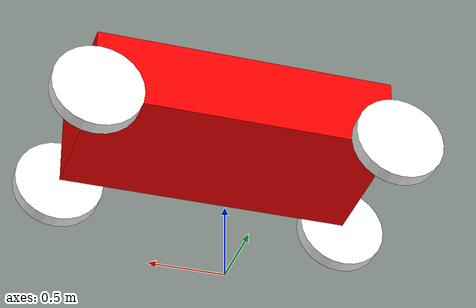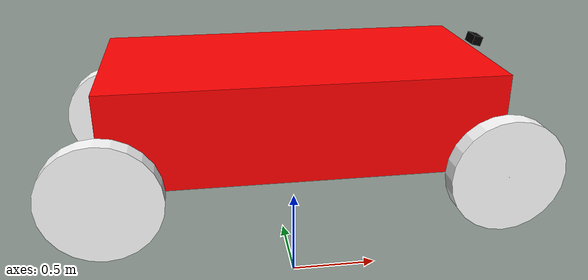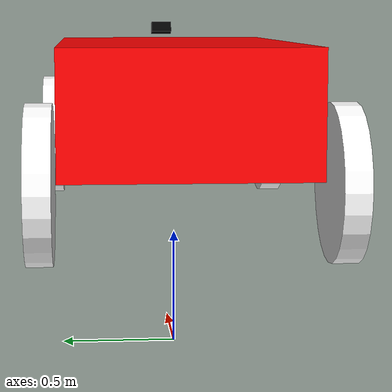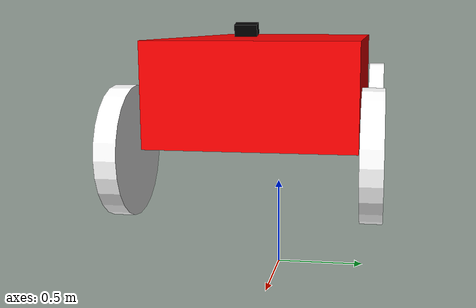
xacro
<?xml version="1.0"?>
<robot xmlns:xacro="http://ros.org/wiki/xacro" name="car" >

    <!--Arguments-->
    <xacro:arg name="body_length" default="2.0" />
    <xacro:arg name="body_width" default="1.0" />
    <xacro:arg name="body_height" default="0.5" />
    <xacro:arg name="wheel_radius" default="0.3" />
    <xacro:arg name="wheel_width" default="0.1" />
    <xacro:arg name="max_steering_angle" default="0.6108" />
    <xacro:arg name="max_steering_angular_velocity" default="1.570796" />
    <xacro:arg name="max_steering_effort" default="100.0" />

    <!-- Mathematical Constants -->
    <xacro:property name="PI" value="3.14159265"/>

    <!-- Vehicle Properties -->
    <xacro:property name="body_length" value="$(arg body_length)"/>
    <xacro:property name="body_width" value="$(arg body_width)"/>
    <xacro:property name="body_height" value="$(arg body_height)"/>
    <xacro:property name="wheel_radius" value="$(arg wheel_radius)"/>
    <xacro:property name="wheel_width" value="$(arg wheel_width)"/>
    <xacro:property name="max_steering_angle" value="$(arg max_steering_angle)"/>
    <xacro:property name="max_steering_angular_velocity" value="$(arg max_steering_angular_velocity)"/>
    <xacro:property name="max_steering_effort" value="$(arg max_steering_effort)"/>

    <xacro:include filename="inertial.xacro"/>
    <xacro:include filename="gazebo.xacro"/>

    <link name="base_link"/>

    <joint name="base_joint" type="fixed">
      <parent link="base_link"/>
      <child link="body_link"/>
      <origin xyz="0 0 ${wheel_radius * 2 + 0.5}" rpy="0 0 0"/>
    </joint>

    <!--LINK-->

    <!-- Body Link -->
    <link name = "body_link">
        <visual>
            <origin xyz = "0.0 0.0 0.0" rpy = "0.0 0.0 0.0"/>
            <geometry>
                <box size = "${body_length} ${body_width} ${body_height}"/>
            </geometry>
            <material name = "body_material">
                <color rgba = "1 0 0 1"/>
            </material>
        </visual>
        <collision>
            <origin xyz = "0.0 0.0 0.0" rpy = "0.0 0.0 0.0"/>
            <geometry>
                <box size = "${body_length} ${body_width} ${body_height}"/>
            </geometry>
        </collision>
        <xacro:inertial_box mass = "10" x = "${body_length}" y = "${body_width}" z = "${body_height}">
            <origin xyz = "0.0 0.0 0.0" rpy = "0.0 0.0 0.0"/>
        </xacro:inertial_box>
    </link>

    <!-- Front Left Wheel-->
    <link name = "front_left_wheel_link">
        <visual>
            <origin xyz = "0.0 0.0 0.0" rpy = "${PI/2} 0.0 0.0"/>
            <geometry>
                <cylinder radius = "${wheel_radius}" length = "${wheel_width}"/>
            </geometry>
            <material name = "wheel_material">
                <color rgba = " 1 1 1 1"/>
            </material>
        </visual>
        <collision>
            <origin xyz = "0.0 0.0 0.0" rpy = "${PI/2} 0.0 0.0"/>
            <geometry>
                <cylinder radius = "${wheel_radius}" length = "${wheel_width}"/>
            </geometry>
        </collision>
        <xacro:inertial_cylinder mass = "5" length = "${wheel_width}" radius = "${wheel_radius}">
            <origin xyz = "0.0 0.0 0.0" rpy = "${PI/2} 0.0 0.0"/>
        </xacro:inertial_cylinder>
    </link>

    <!-- Front Right Wheel-->
    <link name = "front_right_wheel_link">
        <visual>
            <origin xyz = "0.0 0.0 0.0" rpy = "${PI/2} 0.0 0.0"/>
            <geometry>
                <cylinder radius = "${wheel_radius}" length = "${wheel_width}"/>
            </geometry>
            <material name = "wheel_material">
                <color rgba = "1 1 1 1"/>
            </material>
        </visual>
        <collision>
            <origin xyz = "0.0 0.0 0.0" rpy = "${PI/2} 0.0 0.0"/>
            <geometry>
                <cylinder radius = "${wheel_radius}" length = "${wheel_width}"/>
            </geometry>
        </collision>
        <xacro:inertial_cylinder mass = "5" length = "${wheel_width}" radius = "${wheel_radius}">
            <origin xyz = "0.0 0.0 0.0" rpy = "${PI/2} 0.0 0.0"/>
        </xacro:inertial_cylinder>
    </link>

    <!-- Back Left Wheel-->
    <link name = "back_left_wheel_link">
        <visual>
            <origin xyz = "0.0 0.0 0.0" rpy = "${PI/2} 0.0 0.0"/>
            <geometry>
                <cylinder radius = "${wheel_radius}" length = "${wheel_width}"/>
            </geometry>
            <material name = "wheel_material">
                <color rgba = "1 1 1 1"/>
            </material>
        </visual>
        <collision>
            <origin xyz = "0.0 0.0 0.0" rpy = "${PI/2} 0.0 0.0"/>
            <geometry>
                <cylinder radius = "${wheel_radius}" length = "${wheel_width}"/>
            </geometry>
        </collision>
        <xacro:inertial_cylinder mass = "5" length = "${wheel_width}" radius = "${wheel_radius}">
            <origin xyz = "0.0 0.0 0.0" rpy = "${PI/2} 0.0 0.0"/>
        </xacro:inertial_cylinder>
    </link>

    <!-- Back Right Wheel-->
    <link name = "back_right_wheel_link">
        <visual>
            <origin xyz = "0.0 0.0 0.0" rpy = "${PI/2} 0.0 0.0"/>
            <geometry>
                <cylinder radius = "${wheel_radius}" length = "${wheel_width}"/>
            </geometry>
            <material name = "wheel_material">
                <color rgba = "1 1 1 1"/>
            </material>
        </visual>
        <collision>
            <origin xyz = "0.0 0.0 0.0" rpy = "${PI/2} 0.0 0.0"/>
            <geometry>
                <cylinder radius = "${wheel_radius}" length = "${wheel_width}"/>
            </geometry>
        </collision>
        <xacro:inertial_cylinder mass = "5" length = "${wheel_width}" radius = "${wheel_radius}">
            <origin xyz = "0.0 0.0 0.0" rpy = "${PI/2} 0.0 0.0"/>
        </xacro:inertial_cylinder>
    </link>

    <!-- Left Wheel Steering -->
    <link name = "left_wheel_steering_link">
        <visual>
            <origin xyz = "0.0 0.0 0.0" rpy = "${PI/2} 0.0 0.0"/>
            <geometry>
                <cylinder radius = "0.001" length = "0.1"/>
            </geometry>
            <material name = "wheel_material">
                <color rgba = "1 1 1 1"/>
            </material>
        </visual>
        <collision>
            <origin xyz = "0.0 0.0 0.0" rpy = "${PI/2} 0.0 0.0"/>
            <geometry>
                <cylinder radius = "0.001" length = "0.1"/>
            </geometry>
        </collision>
        <inertial>
            <mass value="0.01"/>
            <inertia ixx="0.000001" ixy="0.0" ixz="0.0" iyy="0.000001" iyz="0.0" izz="0.000001"/>
                <origin xyz="0.0 0.0 0.0" rpy="1.570795 0.0 0.0"/>
        </inertial>
    </link>

    <!-- Right Wheel Steering -->
    <link name = "right_wheel_steering_link">
        <visual>
            <origin xyz = "0.0 0.0 0.0" rpy = "${PI/2} 0.0 0.0"/>
            <geometry>
                <cylinder radius = "0.001" length = "0.1"/>
            </geometry>
            <material name = "wheel_material">
                <color rgba = "1 1 1 1"/>
            </material>
        </visual>
        <collision>
            <origin xyz = "0.0 0.0 0.0" rpy = "${PI/2} 0.0 0.0"/>
            <geometry>
                <cylinder radius = "0.001" length = "0.1"/>
            </geometry>
        </collision>
        <inertial>
            <mass value="0.01"/>
            <inertia ixx="0.000001" ixy="0.0" ixz="0.0" iyy="0.000001" iyz="0.0" izz="0.000001"/>
                <origin xyz="0.0 0.0 0.0" rpy="1.570795 0.0 0.0"/>
        </inertial>
    </link>

    <link name="camera_link">
        <visual>
            <geometry>
                <box size="0.05 0.1 0.05"/> <!-- 작고 납작한 상자 모양 -->
            </geometry>
            <material name="black">
                <color rgba="0 0 0 1"/>
            </material>
        </visual>
        <collision>
            <geometry>
                <box size="0.05 0.1 0.05"/>
            </geometry>
        </collision>
        <xacro:inertial_box mass="0.1" x="0.05" y="0.1" z="0.05">
            <origin xyz="0 0 0" rpy="0 0 0"/>
        </xacro:inertial_box>
    </link>

    <!-- JOINT -->

    <!-- Front Left Wheel Joint -->
    <joint name = "front_left_wheel_joint" type = "continuous">
        <origin xyz = "0 0 0" rpy = "0 0 0"/>
        <parent link = "left_wheel_steering_link"/>
        <child link = "front_left_wheel_link"/>
        <axis xyz = "0 1 0"/>
    </joint>

    <!-- Front Right Wheel Joint -->
    <joint name = "front_right_wheel_joint" type = "continuous">
        <origin xyz = "0 0 0" rpy = "0 0 0"/>
        <parent link = "right_wheel_steering_link"/>
        <child link = "front_right_wheel_link"/>
        <axis xyz = "0 1 0"/>
    </joint>

    <!-- Back Left Wheel Joint -->
    <joint name = "back_left_wheel_joint" type = "continuous">
        <origin xyz = "${-body_length/2} ${body_width/2 + wheel_width/2 + 0.01} ${-body_height/2}" rpy = "0 0 0"/>
        <parent link = "body_link"/>
        <child link = "back_left_wheel_link"/>
        <axis xyz = "0 1 0"/>
    </joint>

    <!-- Back Right Wheel Joint -->
    <joint name = "back_right_wheel_joint" type = "continuous">
        <origin xyz = "${-body_length/2} ${-body_width/2 - wheel_width/2 - 0.01} ${-body_height/2}" rpy = "0 0 0"/>
        <parent link = "body_link"/>
        <child link = "back_right_wheel_link"/>
        <axis xyz = "0 1 0"/>
    </joint>

    <!-- Left Wheel Steering Joint -->
    <joint name = "left_wheel_steering_joint" type = "revolute">
    <origin xyz = "${body_length/2} ${body_width/2 + wheel_width/2 + 0.01} ${-body_height/2}" rpy = "0 0 0"/>
    <parent link = "body_link"/>
    <child link = "left_wheel_steering_link"/>
    <axis xyz = "0 0 1"/>
    <limit effort="${max_steering_effort}" lower="${-max_steering_angle}" upper="${max_steering_angle}" velocity="${max_steering_angular_velocity}"/>
    </joint>

    <!-- Right Wheel Steering Joint -->
    <joint name = "right_wheel_steering_joint" type = "revolute">
    <origin xyz = "${body_length/2} ${-body_width/2 - wheel_width/2 - 0.01} ${-body_height/2}" rpy = "0 0 0"/>
    <parent link = "body_link"/>
    <child link = "right_wheel_steering_link"/>
    <axis xyz = "0 0 1"/>
    <limit effort="${max_steering_effort}" lower="${-max_steering_angle}" upper="${max_steering_angle}" velocity="${max_steering_angular_velocity}"/>
    </joint>

    <!-- Camera Joint (차체 앞부분 상단에 카메라 고정) -->
    <joint name="camera_joint" type="fixed">
        <parent link="body_link"/>
        <child link="camera_link"/>
        <!-- x: 차체 길이의 절반(맨 앞), z: 차체 높이의 절반 + 약간 위 -->
        <origin xyz="${body_length/2} 0 ${body_height/2 + 0.05}" rpy="0 0.26 0"/>
    </joint>
</robot>

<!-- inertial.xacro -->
<robot xmlns:xacro="http://www.ros.org/wiki/xacro">

    <xacro:macro name="inertial_box" params="mass x y z *origin">
        <inertial>
            <xacro:insert_block name="origin"/>
            <mass value="${mass}" />
            <inertia ixx="${(1/12) * mass * (y*y+z*z)}" ixy="0.0" ixz="0.0"
                    iyy="${(1/12) * mass * (x*x+z*z)}" iyz="0.0"
                    izz="${(1/12) * mass * (x*x+y*y)}" />
        </inertial>
    </xacro:macro>

    <xacro:macro name="inertial_cylinder" params="mass length radius *origin">
        <inertial>
            <xacro:insert_block name="origin"/>
            <mass value="${mass}" />
            <inertia ixx="${(1/12) * mass * (3*radius*radius + length*length)}" ixy="0.0" ixz="0.0"
                    iyy="${(1/12) * mass * (3*radius*radius + length*length)}" iyz="0.0"
                    izz="${(1/2) * mass * (radius*radius)}" />
        </inertial>
    </xacro:macro>

</robot>
